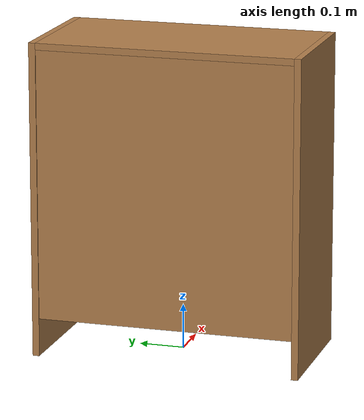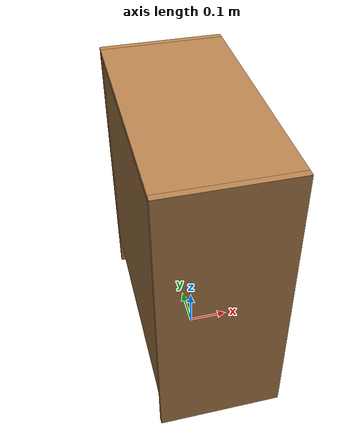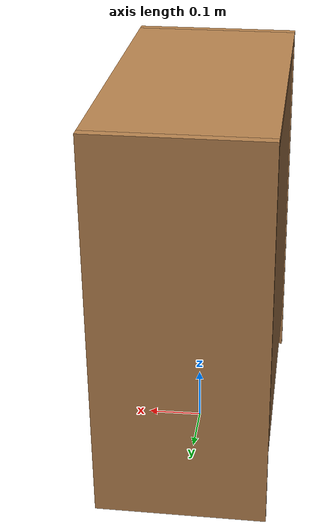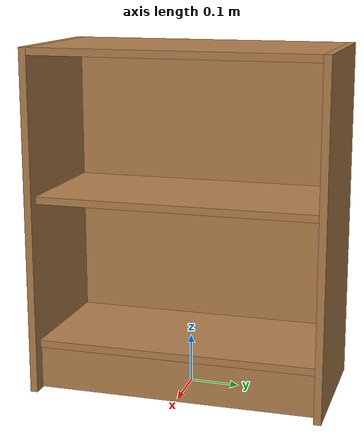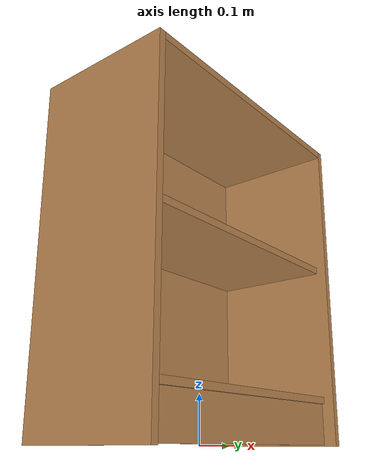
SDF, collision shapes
<?xml version="1.0" ?>
<sdf version="1.5">
  <model name="cabinet_no_door_markers">
    <link name="cabinet">
      <pose>0 0 0.35 0 0 0</pose>
      <inertial>
        <mass>16.0</mass>
        <pose>0 0 0 0 0 0</pose>
        <inertia>
          <ixx>1.59</ixx>
          <ixy>0</ixy>
          <ixz>0</ixz>
          <iyy>1.12</iyy>
          <iyz>0</iyz>
          <izz>0.91</izz>
        </inertia>
      </inertial>
      <collision name="back">
        <pose>-0.14 0 0.035 0 0 0</pose>
        <geometry>
          <box>
            <size>0.015 0.585 0.6</size>
          </box>
        </geometry>
      </collision>
      <visual name="visual1">
        <pose>-0.14 0 0.035 0 0 0</pose>
        <geometry>
          <box>
            <size>0.015 0.585 0.6</size>
          </box>
        </geometry>
        <material>
          <script>
            <uri>file://media/materials/scripts/gazebo.material</uri>
            <name>Gazebo/Wood</name>
          </script>
        </material>
      </visual>
      <collision name="left_side">
        <pose>0 -0.2925 0 0 0 0</pose>
        <geometry>
          <box>
            <size>0.3 0.015 0.7</size>
          </box>
        </geometry>
      </collision>
      <visual name="visual2">
        <pose>0 -0.2925 0 0 0 0</pose>
        <geometry>
          <box>
            <size>0.3 0.015 0.7</size>
          </box>
        </geometry>
        <material>
          <script>
            <uri>file://media/materials/scripts/gazebo.material</uri>
            <name>Gazebo/Wood</name>
          </script>
        </material>
      </visual>
      <collision name="right_side">
        <pose>0 0.2925 0 0 0 0</pose>
        <geometry>
          <box>
            <size>0.3 0.015 0.7</size>
          </box>
        </geometry>
      </collision>
      <visual name="visual3">
        <pose>0 0.2925 0 0 0 0</pose>
        <geometry>
          <box>
            <size>0.3 0.015 0.7</size>
          </box>
        </geometry>
        <material>
          <script>
            <uri>file://media/materials/scripts/gazebo.material</uri>
            <name>Gazebo/Wood</name>
          </script>
        </material>
      </visual>
      <collision name="bottom">
        <pose>-0.002 0 -0.2525 0 0 0</pose>
        <geometry>
          <box>
            <size>0.26 0.57 0.015</size>
          </box>
        </geometry>
      </collision>
      <visual name="visual4">
        <pose>-0.002 0 -0.2525 0 0 0</pose>
        <geometry>
          <box>
            <size>0.26 0.57 0.015</size>
          </box>
        </geometry>
        <material>
          <script>
            <uri>file://media/materials/scripts/gazebo.material</uri>
            <name>Gazebo/Wood</name>
          </script>
        </material>
      </visual>
      <collision name="top">
        <pose>0 0 0.3425 0 0 0</pose>
        <geometry>
          <box>
            <size>0.3 0.57 0.015</size>
          </box>
        </geometry>
      </collision>
      <visual name="visual5">
        <pose>0 0 0.3425 0 0 0</pose>
        <geometry>
          <box>
            <size>0.3 0.57 0.015</size>
          </box>
        </geometry>
        <material>
          <script>
            <uri>file://media/materials/scripts/gazebo.material</uri>
            <name>Gazebo/Wood</name>
          </script>
        </material>
      </visual>
      <collision name="middle_shelf">
        <pose>-0.002 0 0.0475 0 0 0</pose>
        <geometry>
          <box>
            <size>0.26 0.57 0.015</size>
          </box>
        </geometry>
      </collision>
      <visual name="visual6">
        <pose>-0.002 0 0.0475 0 0 0</pose>
        <geometry>
          <box>
            <size>0.26 0.57 0.015</size>
          </box>
        </geometry>
        <material>
          <script>
            <uri>file://media/materials/scripts/gazebo.material</uri>
            <name>Gazebo/Wood</name>
          </script>
        </material>
      </visual>
      <collision name="low_front">
        <pose>0.115 0 -0.3025 0 0 0</pose>
        <geometry>
          <box>
            <size>0.015 0.57 0.09</size>
          </box>
        </geometry>
      </collision>
      <visual name="visual7">
        <pose>0.115 0 -0.3025 0 0 0</pose>
        <geometry>
          <box>
            <size>0.015 0.57 0.09</size>
          </box>
        </geometry>
        <material>
          <script>
            <uri>file://media/materials/scripts/gazebo.material</uri>
            <name>Gazebo/Wood</name>
          </script>
        </material>
      </visual>
      <visual name='marker_0'>
        <pose frame=''>0.17 0.2 -0.305 0 1.57079 0</pose>
        <geometry>
          <mesh>
            <uri>model://ar_marker_8cm_0/meshes/ar_marker_8cm.dae</uri>
          </mesh>
        </geometry>
      </visual>
      <visual name='marker_1'>
        <pose frame=''>0.17 -0.2 -0.305 0 1.57079 0</pose>
        <geometry>
          <mesh>
            <uri>model://ar_marker_8cm_1/meshes/ar_marker_8cm.dae</uri>
          </mesh>
        </geometry>
      </visual>
      <visual name='marker_2'>
        <pose frame=''>-0.12 -0.2 0.1 0 1.57069 0</pose>
        <geometry>
          <mesh>
            <uri>model://ar_marker_8cm_2/meshes/ar_marker_8cm.dae</uri>
          </mesh>
        </geometry>
      </visual>
      <visual name='marker_3'>
        <pose frame=''>-0.12 0.2 0.1 0 1.57069 0</pose>
        <geometry>
          <mesh>
            <uri>model://ar_marker_8cm_3/meshes/ar_marker_8cm.dae</uri>
          </mesh>
        </geometry>
      </visual>
    </link>
  </model>
</sdf>
